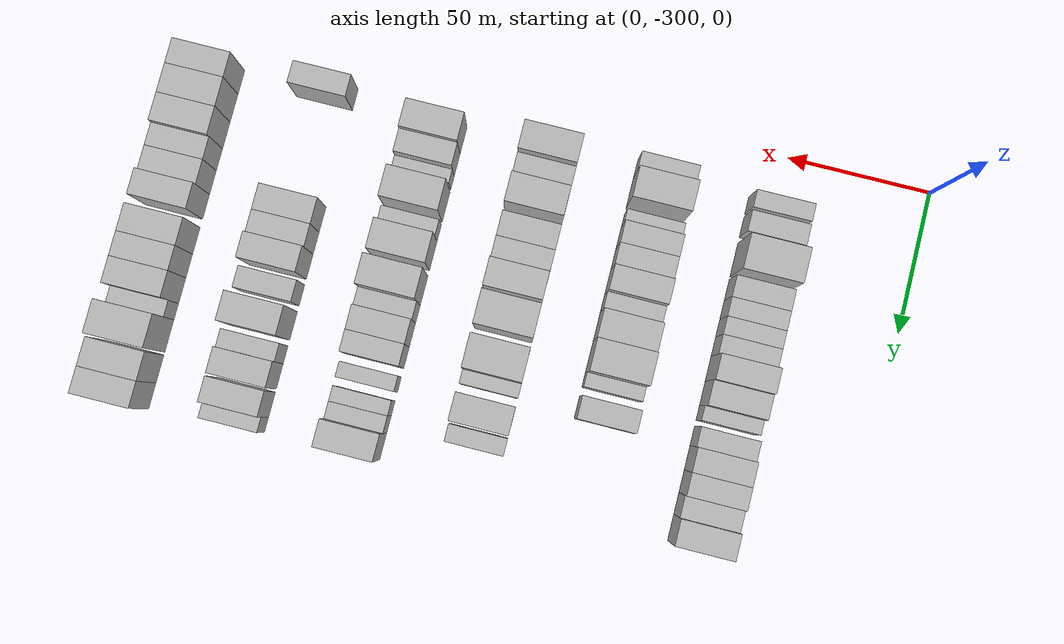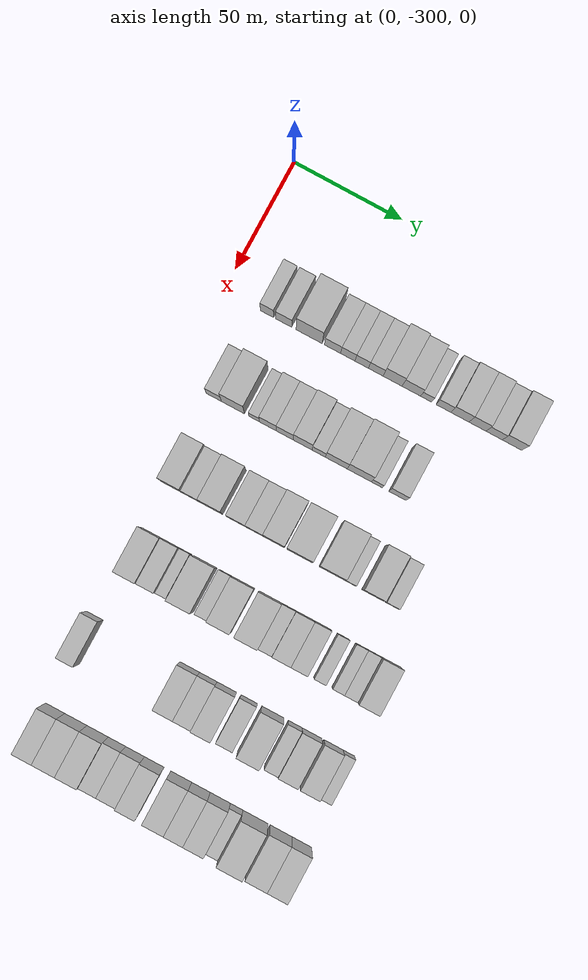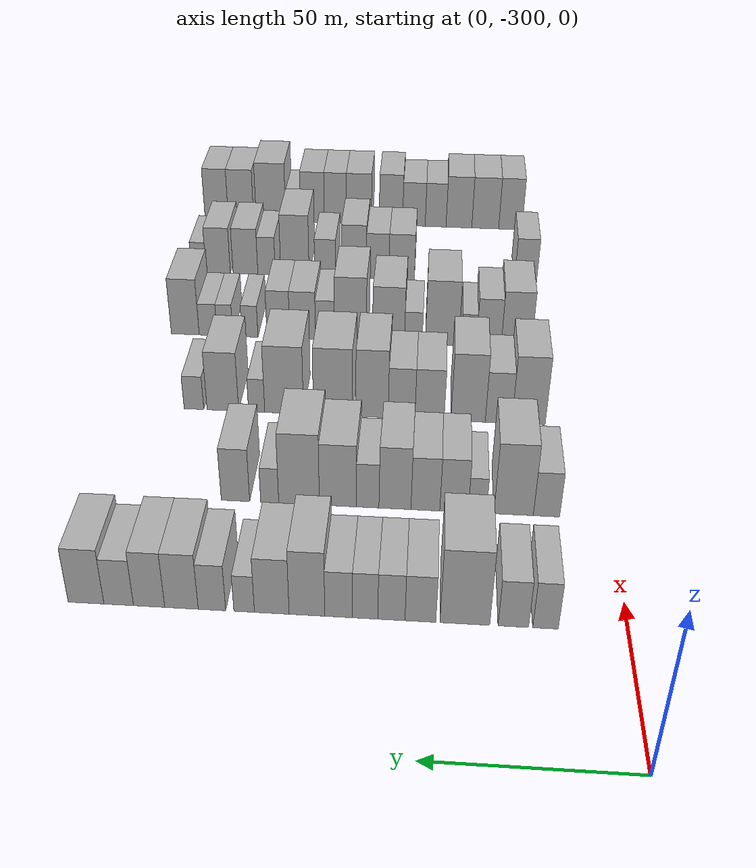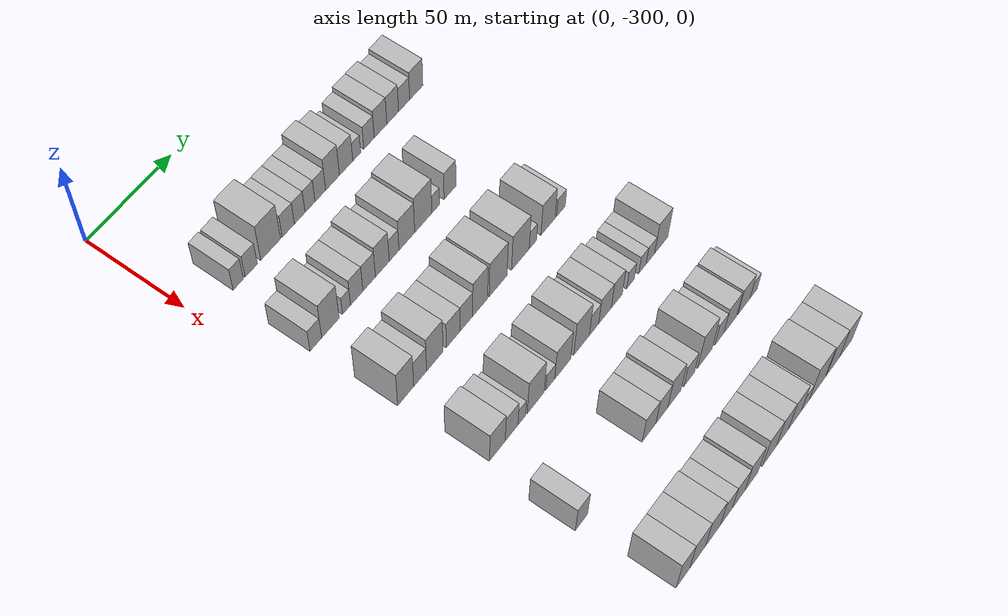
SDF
<sdf version="1.6">
 <world name="default">
  <model name="building_40">
   <static>1</static>
   <pose>50.0000 -280.1868 0 0.000000 0.000000 0.000000</pose>
   <link name="link">
    <pose>0 0 7.50 0 0 0</pose>
    <collision name="collision"><geometry><box><size>20.0000 6.0826 15.0000</size></box></geometry></collision>
    <visual name="visual">
     <cast_shadows>0</cast_shadows>
     <geometry><box><size>20.0000 6.0826 15.0000</size></box></geometry>
     <material>
      <script>
       <uri>model://HANNAS_wall/materials/scripts</uri>
       <uri>model://HANNAS_wall/materials/textures</uri>
       <name>vrc/HANNAS_wall</name>
      </script>
     </material>
    </visual>
   </link>
  </model>
  <model name="building_41">
   <static>1</static>
   <pose>50.0000 -272.4951 0 0.000000 0.000000 0.000000</pose>
   <link name="link">
    <pose>0 0 7.50 0 0 0</pose>
    <collision name="collision"><geometry><box><size>20.0000 7.3009 15.0000</size></box></geometry></collision>
    <visual name="visual">
     <cast_shadows>0</cast_shadows>
     <geometry><box><size>20.0000 7.3009 15.0000</size></box></geometry>
     <material>
      <script>
       <uri>model://HANNAS_wall/materials/scripts</uri>
       <uri>model://HANNAS_wall/materials/textures</uri>
       <name>vrc/HANNAS_wall</name>
      </script>
     </material>
    </visual>
   </link>
  </model>
  <model name="building_42">
   <static>1</static>
   <pose>50.0000 -260.8560 0 0.000000 0.000000 0.000000</pose>
   <link name="link">
    <pose>0 0 12.00 0 0 0</pose>
    <collision name="collision"><geometry><box><size>20.0000 11.9773 24.0000</size></box></geometry></collision>
    <visual name="visual">
     <cast_shadows>0</cast_shadows>
     <geometry><box><size>20.0000 11.9773 24.0000</size></box></geometry>
     <material>
      <script>
       <uri>model://HANNAS_wall/materials/scripts</uri>
       <uri>model://HANNAS_wall/materials/textures</uri>
       <name>vrc/HANNAS_wall</name>
      </script>
     </material>
    </visual>
   </link>
  </model>
  <model name="building_43">
   <static>1</static>
   <pose>50.0000 -250.1398 0 0.000000 0.000000 0.000000</pose>
   <link name="link">
    <pose>0 0 7.50 0 0 0</pose>
    <collision name="collision"><geometry><box><size>20.0000 7.4550 15.0000</size></box></geometry></collision>
    <visual name="visual">
     <cast_shadows>0</cast_shadows>
     <geometry><box><size>20.0000 7.4550 15.0000</size></box></geometry>
     <material>
      <script>
       <uri>model://HANNAS_wall/materials/scripts</uri>
       <uri>model://HANNAS_wall/materials/textures</uri>
       <name>vrc/HANNAS_wall</name>
      </script>
     </material>
    </visual>
   </link>
  </model>
  <model name="building_44">
   <static>1</static>
   <pose>50.0000 -243.1151 0 0.000000 0.000000 0.000000</pose>
   <link name="link">
    <pose>0 0 7.50 0 0 0</pose>
    <collision name="collision"><geometry><box><size>20.0000 6.5945 15.0000</size></box></geometry></collision>
    <visual name="visual">
     <cast_shadows>0</cast_shadows>
     <geometry><box><size>20.0000 6.5945 15.0000</size></box></geometry>
     <material>
      <script>
       <uri>model://HANNAS_wall/materials/scripts</uri>
       <uri>model://HANNAS_wall/materials/textures</uri>
       <name>vrc/HANNAS_wall</name>
      </script>
     </material>
    </visual>
   </link>
  </model>
  <model name="building_45">
   <static>1</static>
   <pose>50.0000 -236.7300 0 0.000000 0.000000 0.000000</pose>
   <link name="link">
    <pose>0 0 7.50 0 0 0</pose>
    <collision name="collision"><geometry><box><size>20.0000 6.1757 15.0000</size></box></geometry></collision>
    <visual name="visual">
     <cast_shadows>0</cast_shadows>
     <geometry><box><size>20.0000 6.1757 15.0000</size></box></geometry>
     <material>
      <script>
       <uri>model://HANNAS_wall/materials/scripts</uri>
       <uri>model://HANNAS_wall/materials/textures</uri>
       <name>vrc/HANNAS_wall</name>
      </script>
     </material>
    </visual>
   </link>
  </model>
  <model name="building_46">
   <static>1</static>
   <pose>50.0000 -230.2911 0 0.000000 0.000000 0.000000</pose>
   <link name="link">
    <pose>0 0 7.50 0 0 0</pose>
    <collision name="collision"><geometry><box><size>20.0000 6.7020 15.0000</size></box></geometry></collision>
    <visual name="visual">
     <cast_shadows>0</cast_shadows>
     <geometry><box><size>20.0000 6.7020 15.0000</size></box></geometry>
     <material>
      <script>
       <uri>model://HANNAS_wall/materials/scripts</uri>
       <uri>model://HANNAS_wall/materials/textures</uri>
       <name>vrc/HANNAS_wall</name>
      </script>
     </material>
    </visual>
   </link>
  </model>
  <model name="building_47">
   <static>1</static>
   <pose>50.0000 -222.5917 0 0.000000 0.000000 0.000000</pose>
   <link name="link">
    <pose>0 0 10.50 0 0 0</pose>
    <collision name="collision"><geometry><box><size>20.0000 8.6969 21.0000</size></box></geometry></collision>
    <visual name="visual">
     <cast_shadows>0</cast_shadows>
     <geometry><box><size>20.0000 8.6969 21.0000</size></box></geometry>
     <material>
      <script>
       <uri>model://HANNAS_wall/materials/scripts</uri>
       <uri>model://HANNAS_wall/materials/textures</uri>
       <name>vrc/HANNAS_wall</name>
      </script>
     </material>
    </visual>
   </link>
  </model>
  <model name="building_48">
   <static>1</static>
   <pose>50.0000 -213.9903 0 0.000000 0.000000 0.000000</pose>
   <link name="link">
    <pose>0 0 9.00 0 0 0</pose>
    <collision name="collision"><geometry><box><size>20.0000 8.5060 18.0000</size></box></geometry></collision>
    <visual name="visual">
     <cast_shadows>0</cast_shadows>
     <geometry><box><size>20.0000 8.5060 18.0000</size></box></geometry>
     <material>
      <script>
       <uri>model://HANNAS_wall/materials/scripts</uri>
       <uri>model://HANNAS_wall/materials/textures</uri>
       <name>vrc/HANNAS_wall</name>
      </script>
     </material>
    </visual>
   </link>
  </model>
  <model name="building_49">
   <static>1</static>
   <pose>50.0000 -207.2096 0 0.000000 0.000000 0.000000</pose>
   <link name="link">
    <pose>0 0 6.00 0 0 0</pose>
    <collision name="collision"><geometry><box><size>20.0000 5.0555 12.0000</size></box></geometry></collision>
    <visual name="visual">
     <cast_shadows>0</cast_shadows>
     <geometry><box><size>20.0000 5.0555 12.0000</size></box></geometry>
     <material>
      <script>
       <uri>model://HANNAS_wall/materials/scripts</uri>
       <uri>model://HANNAS_wall/materials/textures</uri>
       <name>vrc/HANNAS_wall</name>
      </script>
     </material>
    </visual>
   </link>
  </model>
  <model name="building_50">
   <static>1</static>
   <pose>50.0000 -199.2909 0 0.000000 0.000000 0.000000</pose>
   <link name="link">
    <pose>0 0 7.50 0 0 0</pose>
    <collision name="collision"><geometry><box><size>20.0000 6.7819 15.0000</size></box></geometry></collision>
    <visual name="visual">
     <cast_shadows>0</cast_shadows>
     <geometry><box><size>20.0000 6.7819 15.0000</size></box></geometry>
     <material>
      <script>
       <uri>model://HANNAS_wall/materials/scripts</uri>
       <uri>model://HANNAS_wall/materials/textures</uri>
       <name>vrc/HANNAS_wall</name>
      </script>
     </material>
    </visual>
   </link>
  </model>
  <model name="building_51">
   <static>1</static>
   <pose>50.0000 -191.7528 0 0.000000 0.000000 0.000000</pose>
   <link name="link">
    <pose>0 0 9.00 0 0 0</pose>
    <collision name="collision"><geometry><box><size>20.0000 8.2944 18.0000</size></box></geometry></collision>
    <visual name="visual">
     <cast_shadows>0</cast_shadows>
     <geometry><box><size>20.0000 8.2944 18.0000</size></box></geometry>
     <material>
      <script>
       <uri>model://HANNAS_wall/materials/scripts</uri>
       <uri>model://HANNAS_wall/materials/textures</uri>
       <name>vrc/HANNAS_wall</name>
      </script>
     </material>
    </visual>
   </link>
  </model>
  <model name="building_52">
   <static>1</static>
   <pose>50.0000 -183.7305 0 0.000000 0.000000 0.000000</pose>
   <link name="link">
    <pose>0 0 9.00 0 0 0</pose>
    <collision name="collision"><geometry><box><size>20.0000 7.7502 18.0000</size></box></geometry></collision>
    <visual name="visual">
     <cast_shadows>0</cast_shadows>
     <geometry><box><size>20.0000 7.7502 18.0000</size></box></geometry>
     <material>
      <script>
       <uri>model://HANNAS_wall/materials/scripts</uri>
       <uri>model://HANNAS_wall/materials/textures</uri>
       <name>vrc/HANNAS_wall</name>
      </script>
     </material>
    </visual>
   </link>
  </model>
  <model name="building_53">
   <static>1</static>
   <pose>50.0000 -176.1600 0 0.000000 0.000000 0.000000</pose>
   <link name="link">
    <pose>0 0 7.50 0 0 0</pose>
    <collision name="collision"><geometry><box><size>20.0000 7.3907 15.0000</size></box></geometry></collision>
    <visual name="visual">
     <cast_shadows>0</cast_shadows>
     <geometry><box><size>20.0000 7.3907 15.0000</size></box></geometry>
     <material>
      <script>
       <uri>model://HANNAS_wall/materials/scripts</uri>
       <uri>model://HANNAS_wall/materials/textures</uri>
       <name>vrc/HANNAS_wall</name>
      </script>
     </material>
    </visual>
   </link>
  </model>
  <model name="building_54">
   <static>1</static>
   <pose>50.0000 -168.0063 0 0.000000 0.000000 0.000000</pose>
   <link name="link">
    <pose>0 0 9.00 0 0 0</pose>
    <collision name="collision"><geometry><box><size>20.0000 8.9166 18.0000</size></box></geometry></collision>
    <visual name="visual">
     <cast_shadows>0</cast_shadows>
     <geometry><box><size>20.0000 8.9166 18.0000</size></box></geometry>
     <material>
      <script>
       <uri>model://HANNAS_wall/materials/scripts</uri>
       <uri>model://HANNAS_wall/materials/textures</uri>
       <name>vrc/HANNAS_wall</name>
      </script>
     </material>
    </visual>
   </link>
  </model>
  <model name="building_183">
   <static>1</static>
   <pose>90.0000 -282.9217 0 0.000000 0.000000 0.000000</pose>
   <link name="link">
    <pose>0 0 7.50 0 0 0</pose>
    <collision name="collision"><geometry><box><size>20.0000 6.9858 15.0000</size></box></geometry></collision>
    <visual name="visual">
     <cast_shadows>0</cast_shadows>
     <geometry><box><size>20.0000 6.9858 15.0000</size></box></geometry>
     <material>
      <script>
       <uri>model://HANNAS_wall/materials/scripts</uri>
       <uri>model://HANNAS_wall/materials/textures</uri>
       <name>vrc/HANNAS_wall</name>
      </script>
     </material>
    </visual>
   </link>
  </model>
  <model name="building_184">
   <static>1</static>
   <pose>90.0000 -274.1779 0 0.000000 0.000000 0.000000</pose>
   <link name="link">
    <pose>0 0 12.00 0 0 0</pose>
    <collision name="collision"><geometry><box><size>20.0000 10.5017 24.0000</size></box></geometry></collision>
    <visual name="visual">
     <cast_shadows>0</cast_shadows>
     <geometry><box><size>20.0000 10.5017 24.0000</size></box></geometry>
     <material>
      <script>
       <uri>model://HANNAS_wall/materials/scripts</uri>
       <uri>model://HANNAS_wall/materials/textures</uri>
       <name>vrc/HANNAS_wall</name>
      </script>
     </material>
    </visual>
   </link>
  </model>
  <model name="building_185">
   <static>1</static>
   <pose>90.0000 -264.4903 0 0.000000 0.000000 0.000000</pose>
   <link name="link">
    <pose>0 0 6.00 0 0 0</pose>
    <collision name="collision"><geometry><box><size>20.0000 4.8736 12.0000</size></box></geometry></collision>
    <visual name="visual">
     <cast_shadows>0</cast_shadows>
     <geometry><box><size>20.0000 4.8736 12.0000</size></box></geometry>
     <material>
      <script>
       <uri>model://HANNAS_wall/materials/scripts</uri>
       <uri>model://HANNAS_wall/materials/textures</uri>
       <name>vrc/HANNAS_wall</name>
      </script>
     </material>
    </visual>
   </link>
  </model>
  <model name="building_186">
   <static>1</static>
   <pose>90.0000 -258.2378 0 0.000000 0.000000 0.000000</pose>
   <link name="link">
    <pose>0 0 9.00 0 0 0</pose>
    <collision name="collision"><geometry><box><size>20.0000 7.6314 18.0000</size></box></geometry></collision>
    <visual name="visual">
     <cast_shadows>0</cast_shadows>
     <geometry><box><size>20.0000 7.6314 18.0000</size></box></geometry>
     <material>
      <script>
       <uri>model://HANNAS_wall/materials/scripts</uri>
       <uri>model://HANNAS_wall/materials/textures</uri>
       <name>vrc/HANNAS_wall</name>
      </script>
     </material>
    </visual>
   </link>
  </model>
  <model name="building_187">
   <static>1</static>
   <pose>90.0000 -250.5424 0 0.000000 0.000000 0.000000</pose>
   <link name="link">
    <pose>0 0 9.00 0 0 0</pose>
    <collision name="collision"><geometry><box><size>20.0000 7.7593 18.0000</size></box></geometry></collision>
    <visual name="visual">
     <cast_shadows>0</cast_shadows>
     <geometry><box><size>20.0000 7.7593 18.0000</size></box></geometry>
     <material>
      <script>
       <uri>model://HANNAS_wall/materials/scripts</uri>
       <uri>model://HANNAS_wall/materials/textures</uri>
       <name>vrc/HANNAS_wall</name>
      </script>
     </material>
    </visual>
   </link>
  </model>
  <model name="building_188">
   <static>1</static>
   <pose>90.0000 -242.3462 0 0.000000 0.000000 0.000000</pose>
   <link name="link">
    <pose>0 0 10.50 0 0 0</pose>
    <collision name="collision"><geometry><box><size>20.0000 8.6331 21.0000</size></box></geometry></collision>
    <visual name="visual">
     <cast_shadows>0</cast_shadows>
     <geometry><box><size>20.0000 8.6331 21.0000</size></box></geometry>
     <material>
      <script>
       <uri>model://HANNAS_wall/materials/scripts</uri>
       <uri>model://HANNAS_wall/materials/textures</uri>
       <name>vrc/HANNAS_wall</name>
      </script>
     </material>
    </visual>
   </link>
  </model>
  <model name="building_189">
   <static>1</static>
   <pose>90.0000 -234.9696 0 0.000000 0.000000 0.000000</pose>
   <link name="link">
    <pose>0 0 7.50 0 0 0</pose>
    <collision name="collision"><geometry><box><size>20.0000 6.1202 15.0000</size></box></geometry></collision>
    <visual name="visual">
     <cast_shadows>0</cast_shadows>
     <geometry><box><size>20.0000 6.1202 15.0000</size></box></geometry>
     <material>
      <script>
       <uri>model://HANNAS_wall/materials/scripts</uri>
       <uri>model://HANNAS_wall/materials/textures</uri>
       <name>vrc/HANNAS_wall</name>
      </script>
     </material>
    </visual>
   </link>
  </model>
  <model name="building_190">
   <static>1</static>
   <pose>90.0000 -226.9036 0 0.000000 0.000000 0.000000</pose>
   <link name="link">
    <pose>0 0 10.50 0 0 0</pose>
    <collision name="collision"><geometry><box><size>20.0000 10.0118 21.0000</size></box></geometry></collision>
    <visual name="visual">
     <cast_shadows>0</cast_shadows>
     <geometry><box><size>20.0000 10.0118 21.0000</size></box></geometry>
     <material>
      <script>
       <uri>model://HANNAS_wall/materials/scripts</uri>
       <uri>model://HANNAS_wall/materials/textures</uri>
       <name>vrc/HANNAS_wall</name>
      </script>
     </material>
    </visual>
   </link>
  </model>
  <model name="building_191">
   <static>1</static>
   <pose>90.0000 -216.3627 0 0.000000 0.000000 0.000000</pose>
   <link name="link">
    <pose>0 0 12.00 0 0 0</pose>
    <collision name="collision"><geometry><box><size>20.0000 11.0700 24.0000</size></box></geometry></collision>
    <visual name="visual">
     <cast_shadows>0</cast_shadows>
     <geometry><box><size>20.0000 11.0700 24.0000</size></box></geometry>
     <material>
      <script>
       <uri>model://HANNAS_wall/materials/scripts</uri>
       <uri>model://HANNAS_wall/materials/textures</uri>
       <name>vrc/HANNAS_wall</name>
      </script>
     </material>
    </visual>
   </link>
  </model>
  <model name="building_192">
   <static>1</static>
   <pose>90.0000 -208.3640 0 0.000000 0.000000 0.000000</pose>
   <link name="link">
    <pose>0 0 6.00 0 0 0</pose>
    <collision name="collision"><geometry><box><size>20.0000 4.9275 12.0000</size></box></geometry></collision>
    <visual name="visual">
     <cast_shadows>0</cast_shadows>
     <geometry><box><size>20.0000 4.9275 12.0000</size></box></geometry>
     <material>
      <script>
       <uri>model://HANNAS_wall/materials/scripts</uri>
       <uri>model://HANNAS_wall/materials/textures</uri>
       <name>vrc/HANNAS_wall</name>
      </script>
     </material>
    </visual>
   </link>
  </model>
  <model name="building_193">
   <static>1</static>
   <pose>90.0000 -199.0063 0 0.000000 0.000000 0.000000</pose>
   <link name="link">
    <pose>0 0 9.00 0 0 0</pose>
    <collision name="collision"><geometry><box><size>20.0000 7.7879 18.0000</size></box></geometry></collision>
    <visual name="visual">
     <cast_shadows>0</cast_shadows>
     <geometry><box><size>20.0000 7.7879 18.0000</size></box></geometry>
     <material>
      <script>
       <uri>model://HANNAS_wall/materials/scripts</uri>
       <uri>model://HANNAS_wall/materials/textures</uri>
       <name>vrc/HANNAS_wall</name>
      </script>
     </material>
    </visual>
   </link>
  </model>
  <model name="building_317">
   <static>1</static>
   <pose>130.0000 -280.1495 0 0.000000 0.000000 0.000000</pose>
   <link name="link">
    <pose>0 0 12.00 0 0 0</pose>
    <collision name="collision"><geometry><box><size>20.0000 9.7644 24.0000</size></box></geometry></collision>
    <visual name="visual">
     <cast_shadows>0</cast_shadows>
     <geometry><box><size>20.0000 9.7644 24.0000</size></box></geometry>
     <material>
      <script>
       <uri>model://HANNAS_wall/materials/scripts</uri>
       <uri>model://HANNAS_wall/materials/textures</uri>
       <name>vrc/HANNAS_wall</name>
      </script>
     </material>
    </visual>
   </link>
  </model>
  <model name="building_318">
   <static>1</static>
   <pose>130.0000 -271.3567 0 0.000000 0.000000 0.000000</pose>
   <link name="link">
    <pose>0 0 9.00 0 0 0</pose>
    <collision name="collision"><geometry><box><size>20.0000 7.8212 18.0000</size></box></geometry></collision>
    <visual name="visual">
     <cast_shadows>0</cast_shadows>
     <geometry><box><size>20.0000 7.8212 18.0000</size></box></geometry>
     <material>
      <script>
       <uri>model://HANNAS_wall/materials/scripts</uri>
       <uri>model://HANNAS_wall/materials/textures</uri>
       <name>vrc/HANNAS_wall</name>
      </script>
     </material>
    </visual>
   </link>
  </model>
  <model name="building_319">
   <static>1</static>
   <pose>130.0000 -262.3689 0 0.000000 0.000000 0.000000</pose>
   <link name="link">
    <pose>0 0 12.00 0 0 0</pose>
    <collision name="collision"><geometry><box><size>20.0000 10.1545 24.0000</size></box></geometry></collision>
    <visual name="visual">
     <cast_shadows>0</cast_shadows>
     <geometry><box><size>20.0000 10.1545 24.0000</size></box></geometry>
     <material>
      <script>
       <uri>model://HANNAS_wall/materials/scripts</uri>
       <uri>model://HANNAS_wall/materials/textures</uri>
       <name>vrc/HANNAS_wall</name>
      </script>
     </material>
    </visual>
   </link>
  </model>
  <model name="building_320">
   <static>1</static>
   <pose>130.0000 -250.9676 0 0.000000 0.000000 0.000000</pose>
   <link name="link">
    <pose>0 0 9.00 0 0 0</pose>
    <collision name="collision"><geometry><box><size>20.0000 8.6480 18.0000</size></box></geometry></collision>
    <visual name="visual">
     <cast_shadows>0</cast_shadows>
     <geometry><box><size>20.0000 8.6480 18.0000</size></box></geometry>
     <material>
      <script>
       <uri>model://HANNAS_wall/materials/scripts</uri>
       <uri>model://HANNAS_wall/materials/textures</uri>
       <name>vrc/HANNAS_wall</name>
      </script>
     </material>
    </visual>
   </link>
  </model>
  <model name="building_321">
   <static>1</static>
   <pose>130.0000 -242.6592 0 0.000000 0.000000 0.000000</pose>
   <link name="link">
    <pose>0 0 9.00 0 0 0</pose>
    <collision name="collision"><geometry><box><size>20.0000 7.9688 18.0000</size></box></geometry></collision>
    <visual name="visual">
     <cast_shadows>0</cast_shadows>
     <geometry><box><size>20.0000 7.9688 18.0000</size></box></geometry>
     <material>
      <script>
       <uri>model://HANNAS_wall/materials/scripts</uri>
       <uri>model://HANNAS_wall/materials/textures</uri>
       <name>vrc/HANNAS_wall</name>
      </script>
     </material>
    </visual>
   </link>
  </model>
  <model name="building_322">
   <static>1</static>
   <pose>130.0000 -233.8591 0 0.000000 0.000000 0.000000</pose>
   <link name="link">
    <pose>0 0 12.00 0 0 0</pose>
    <collision name="collision"><geometry><box><size>20.0000 9.6313 24.0000</size></box></geometry></collision>
    <visual name="visual">
     <cast_shadows>0</cast_shadows>
     <geometry><box><size>20.0000 9.6313 24.0000</size></box></geometry>
     <material>
      <script>
       <uri>model://HANNAS_wall/materials/scripts</uri>
       <uri>model://HANNAS_wall/materials/textures</uri>
       <name>vrc/HANNAS_wall</name>
      </script>
     </material>
    </visual>
   </link>
  </model>
  <model name="building_323">
   <static>1</static>
   <pose>130.0000 -222.2256 0 0.000000 0.000000 0.000000</pose>
   <link name="link">
    <pose>0 0 12.00 0 0 0</pose>
    <collision name="collision"><geometry><box><size>20.0000 11.6358 24.0000</size></box></geometry></collision>
    <visual name="visual">
     <cast_shadows>0</cast_shadows>
     <geometry><box><size>20.0000 11.6358 24.0000</size></box></geometry>
     <material>
      <script>
       <uri>model://HANNAS_wall/materials/scripts</uri>
       <uri>model://HANNAS_wall/materials/textures</uri>
       <name>vrc/HANNAS_wall</name>
      </script>
     </material>
    </visual>
   </link>
  </model>
  <model name="building_324">
   <static>1</static>
   <pose>130.0000 -207.5855 0 0.000000 0.000000 0.000000</pose>
   <link name="link">
    <pose>0 0 12.00 0 0 0</pose>
    <collision name="collision"><geometry><box><size>20.0000 11.6444 24.0000</size></box></geometry></collision>
    <visual name="visual">
     <cast_shadows>0</cast_shadows>
     <geometry><box><size>20.0000 11.6444 24.0000</size></box></geometry>
     <material>
      <script>
       <uri>model://HANNAS_wall/materials/scripts</uri>
       <uri>model://HANNAS_wall/materials/textures</uri>
       <name>vrc/HANNAS_wall</name>
      </script>
     </material>
    </visual>
   </link>
  </model>
  <model name="building_325">
   <static>1</static>
   <pose>130.0000 -199.3218 0 0.000000 0.000000 0.000000</pose>
   <link name="link">
    <pose>0 0 6.00 0 0 0</pose>
    <collision name="collision"><geometry><box><size>20.0000 4.8830 12.0000</size></box></geometry></collision>
    <visual name="visual">
     <cast_shadows>0</cast_shadows>
     <geometry><box><size>20.0000 4.8830 12.0000</size></box></geometry>
     <material>
      <script>
       <uri>model://HANNAS_wall/materials/scripts</uri>
       <uri>model://HANNAS_wall/materials/textures</uri>
       <name>vrc/HANNAS_wall</name>
      </script>
     </material>
    </visual>
   </link>
  </model>
  <model name="building_326">
   <static>1</static>
   <pose>130.0000 -189.1049 0 0.000000 0.000000 0.000000</pose>
   <link name="link">
    <pose>0 0 10.50 0 0 0</pose>
    <collision name="collision"><geometry><box><size>20.0000 9.5509 21.0000</size></box></geometry></collision>
    <visual name="visual">
     <cast_shadows>0</cast_shadows>
     <geometry><box><size>20.0000 9.5509 21.0000</size></box></geometry>
     <material>
      <script>
       <uri>model://HANNAS_wall/materials/scripts</uri>
       <uri>model://HANNAS_wall/materials/textures</uri>
       <name>vrc/HANNAS_wall</name>
      </script>
     </material>
    </visual>
   </link>
  </model>
  <model name="building_327">
   <static>1</static>
   <pose>130.0000 -180.3551 0 0.000000 0.000000 0.000000</pose>
   <link name="link">
    <pose>0 0 6.00 0 0 0</pose>
    <collision name="collision"><geometry><box><size>20.0000 5.9486 12.0000</size></box></geometry></collision>
    <visual name="visual">
     <cast_shadows>0</cast_shadows>
     <geometry><box><size>20.0000 5.9486 12.0000</size></box></geometry>
     <material>
      <script>
       <uri>model://HANNAS_wall/materials/scripts</uri>
       <uri>model://HANNAS_wall/materials/textures</uri>
       <name>vrc/HANNAS_wall</name>
      </script>
     </material>
    </visual>
   </link>
  </model>
  <model name="building_445">
   <static>1</static>
   <pose>170.0000 -278.2353 0 0.000000 0.000000 0.000000</pose>
   <link name="link">
    <pose>0 0 10.50 0 0 0</pose>
    <collision name="collision"><geometry><box><size>20.0000 9.7269 21.0000</size></box></geometry></collision>
    <visual name="visual">
     <cast_shadows>0</cast_shadows>
     <geometry><box><size>20.0000 9.7269 21.0000</size></box></geometry>
     <material>
      <script>
       <uri>model://HANNAS_wall/materials/scripts</uri>
       <uri>model://HANNAS_wall/materials/textures</uri>
       <name>vrc/HANNAS_wall</name>
      </script>
     </material>
    </visual>
   </link>
  </model>
  <model name="building_446">
   <static>1</static>
   <pose>170.0000 -269.4042 0 0.000000 0.000000 0.000000</pose>
   <link name="link">
    <pose>0 0 9.00 0 0 0</pose>
    <collision name="collision"><geometry><box><size>20.0000 7.9352 18.0000</size></box></geometry></collision>
    <visual name="visual">
     <cast_shadows>0</cast_shadows>
     <geometry><box><size>20.0000 7.9352 18.0000</size></box></geometry>
     <material>
      <script>
       <uri>model://HANNAS_wall/materials/scripts</uri>
       <uri>model://HANNAS_wall/materials/textures</uri>
       <name>vrc/HANNAS_wall</name>
      </script>
     </material>
    </visual>
   </link>
  </model>
  <model name="building_447">
   <static>1</static>
   <pose>170.0000 -263.0118 0 0.000000 0.000000 0.000000</pose>
   <link name="link">
    <pose>0 0 6.00 0 0 0</pose>
    <collision name="collision"><geometry><box><size>20.0000 4.8497 12.0000</size></box></geometry></collision>
    <visual name="visual">
     <cast_shadows>0</cast_shadows>
     <geometry><box><size>20.0000 4.8497 12.0000</size></box></geometry>
     <material>
      <script>
       <uri>model://HANNAS_wall/materials/scripts</uri>
       <uri>model://HANNAS_wall/materials/textures</uri>
       <name>vrc/HANNAS_wall</name>
      </script>
     </material>
    </visual>
   </link>
  </model>
  <model name="building_448">
   <static>1</static>
   <pose>170.0000 -254.2408 0 0.000000 0.000000 0.000000</pose>
   <link name="link">
    <pose>0 0 12.00 0 0 0</pose>
    <collision name="collision"><geometry><box><size>20.0000 10.6923 24.0000</size></box></geometry></collision>
    <visual name="visual">
     <cast_shadows>0</cast_shadows>
     <geometry><box><size>20.0000 10.6923 24.0000</size></box></geometry>
     <material>
      <script>
       <uri>model://HANNAS_wall/materials/scripts</uri>
       <uri>model://HANNAS_wall/materials/textures</uri>
       <name>vrc/HANNAS_wall</name>
      </script>
     </material>
    </visual>
   </link>
  </model>
  <model name="building_449">
   <static>1</static>
   <pose>170.0000 -245.0057 0 0.000000 0.000000 0.000000</pose>
   <link name="link">
    <pose>0 0 6.00 0 0 0</pose>
    <collision name="collision"><geometry><box><size>20.0000 5.7780 12.0000</size></box></geometry></collision>
    <visual name="visual">
     <cast_shadows>0</cast_shadows>
     <geometry><box><size>20.0000 5.7780 12.0000</size></box></geometry>
     <material>
      <script>
       <uri>model://HANNAS_wall/materials/scripts</uri>
       <uri>model://HANNAS_wall/materials/textures</uri>
       <name>vrc/HANNAS_wall</name>
      </script>
     </material>
    </visual>
   </link>
  </model>
  <model name="building_450">
   <static>1</static>
   <pose>170.0000 -236.9291 0 0.000000 0.000000 0.000000</pose>
   <link name="link">
    <pose>0 0 10.50 0 0 0</pose>
    <collision name="collision"><geometry><box><size>20.0000 10.3752 21.0000</size></box></geometry></collision>
    <visual name="visual">
     <cast_shadows>0</cast_shadows>
     <geometry><box><size>20.0000 10.3752 21.0000</size></box></geometry>
     <material>
      <script>
       <uri>model://HANNAS_wall/materials/scripts</uri>
       <uri>model://HANNAS_wall/materials/textures</uri>
       <name>vrc/HANNAS_wall</name>
      </script>
     </material>
    </visual>
   </link>
  </model>
  <model name="building_451">
   <static>1</static>
   <pose>170.0000 -224.5737 0 0.000000 0.000000 0.000000</pose>
   <link name="link">
    <pose>0 0 12.00 0 0 0</pose>
    <collision name="collision"><geometry><box><size>20.0000 10.3356 24.0000</size></box></geometry></collision>
    <visual name="visual">
     <cast_shadows>0</cast_shadows>
     <geometry><box><size>20.0000 10.3356 24.0000</size></box></geometry>
     <material>
      <script>
       <uri>model://HANNAS_wall/materials/scripts</uri>
       <uri>model://HANNAS_wall/materials/textures</uri>
       <name>vrc/HANNAS_wall</name>
      </script>
     </material>
    </visual>
   </link>
  </model>
  <model name="building_452">
   <static>1</static>
   <pose>170.0000 -216.2816 0 0.000000 0.000000 0.000000</pose>
   <link name="link">
    <pose>0 0 7.50 0 0 0</pose>
    <collision name="collision"><geometry><box><size>20.0000 6.2487 15.0000</size></box></geometry></collision>
    <visual name="visual">
     <cast_shadows>0</cast_shadows>
     <geometry><box><size>20.0000 6.2487 15.0000</size></box></geometry>
     <material>
      <script>
       <uri>model://HANNAS_wall/materials/scripts</uri>
       <uri>model://HANNAS_wall/materials/textures</uri>
       <name>vrc/HANNAS_wall</name>
      </script>
     </material>
    </visual>
   </link>
  </model>
  <model name="building_453">
   <static>1</static>
   <pose>170.0000 -208.9413 0 0.000000 0.000000 0.000000</pose>
   <link name="link">
    <pose>0 0 9.00 0 0 0</pose>
    <collision name="collision"><geometry><box><size>20.0000 8.4319 18.0000</size></box></geometry></collision>
    <visual name="visual">
     <cast_shadows>0</cast_shadows>
     <geometry><box><size>20.0000 8.4319 18.0000</size></box></geometry>
     <material>
      <script>
       <uri>model://HANNAS_wall/materials/scripts</uri>
       <uri>model://HANNAS_wall/materials/textures</uri>
       <name>vrc/HANNAS_wall</name>
      </script>
     </material>
    </visual>
   </link>
  </model>
  <model name="building_454">
   <static>1</static>
   <pose>170.0000 -200.9959 0 0.000000 0.000000 0.000000</pose>
   <link name="link">
    <pose>0 0 9.00 0 0 0</pose>
    <collision name="collision"><geometry><box><size>20.0000 7.4588 18.0000</size></box></geometry></collision>
    <visual name="visual">
     <cast_shadows>0</cast_shadows>
     <geometry><box><size>20.0000 7.4588 18.0000</size></box></geometry>
     <material>
      <script>
       <uri>model://HANNAS_wall/materials/scripts</uri>
       <uri>model://HANNAS_wall/materials/textures</uri>
       <name>vrc/HANNAS_wall</name>
      </script>
     </material>
    </visual>
   </link>
  </model>
  <model name="building_455">
   <static>1</static>
   <pose>170.0000 -191.6195 0 0.000000 0.000000 0.000000</pose>
   <link name="link">
    <pose>0 0 6.00 0 0 0</pose>
    <collision name="collision"><geometry><box><size>20.0000 5.2940 12.0000</size></box></geometry></collision>
    <visual name="visual">
     <cast_shadows>0</cast_shadows>
     <geometry><box><size>20.0000 5.2940 12.0000</size></box></geometry>
     <material>
      <script>
       <uri>model://HANNAS_wall/materials/scripts</uri>
       <uri>model://HANNAS_wall/materials/textures</uri>
       <name>vrc/HANNAS_wall</name>
      </script>
     </material>
    </visual>
   </link>
  </model>
  <model name="building_456">
   <static>1</static>
   <pose>170.0000 -183.3666 0 0.000000 0.000000 0.000000</pose>
   <link name="link">
    <pose>0 0 6.00 0 0 0</pose>
    <collision name="collision"><geometry><box><size>20.0000 5.2118 12.0000</size></box></geometry></collision>
    <visual name="visual">
     <cast_shadows>0</cast_shadows>
     <geometry><box><size>20.0000 5.2118 12.0000</size></box></geometry>
     <material>
      <script>
       <uri>model://HANNAS_wall/materials/scripts</uri>
       <uri>model://HANNAS_wall/materials/textures</uri>
       <name>vrc/HANNAS_wall</name>
      </script>
     </material>
    </visual>
   </link>
  </model>
  <model name="building_457">
   <static>1</static>
   <pose>170.0000 -177.8051 0 0.000000 0.000000 0.000000</pose>
   <link name="link">
    <pose>0 0 6.00 0 0 0</pose>
    <collision name="collision"><geometry><box><size>20.0000 5.9112 12.0000</size></box></geometry></collision>
    <visual name="visual">
     <cast_shadows>0</cast_shadows>
     <geometry><box><size>20.0000 5.9112 12.0000</size></box></geometry>
     <material>
      <script>
       <uri>model://HANNAS_wall/materials/scripts</uri>
       <uri>model://HANNAS_wall/materials/textures</uri>
       <name>vrc/HANNAS_wall</name>
      </script>
     </material>
    </visual>
   </link>
  </model>
  <model name="building_458">
   <static>1</static>
   <pose>170.0000 -170.2404 0 0.000000 0.000000 0.000000</pose>
   <link name="link">
    <pose>0 0 10.50 0 0 0</pose>
    <collision name="collision"><geometry><box><size>20.0000 9.2181 21.0000</size></box></geometry></collision>
    <visual name="visual">
     <cast_shadows>0</cast_shadows>
     <geometry><box><size>20.0000 9.2181 21.0000</size></box></geometry>
     <material>
      <script>
       <uri>model://HANNAS_wall/materials/scripts</uri>
       <uri>model://HANNAS_wall/materials/textures</uri>
       <name>vrc/HANNAS_wall</name>
      </script>
     </material>
    </visual>
   </link>
  </model>
  <model name="building_592">
   <static>1</static>
   <pose>210.0000 -283.0824 0 0.000000 0.000000 0.000000</pose>
   <link name="link">
    <pose>0 0 9.00 0 0 0</pose>
    <collision name="collision"><geometry><box><size>20.0000 7.6499 18.0000</size></box></geometry></collision>
    <visual name="visual">
     <cast_shadows>0</cast_shadows>
     <geometry><box><size>20.0000 7.6499 18.0000</size></box></geometry>
     <material>
      <script>
       <uri>model://HANNAS_wall/materials/scripts</uri>
       <uri>model://HANNAS_wall/materials/textures</uri>
       <name>vrc/HANNAS_wall</name>
      </script>
     </material>
    </visual>
   </link>
  </model>
  <model name="building_593">
   <static>1</static>
   <pose>210.0000 -239.7665 0 0.000000 0.000000 0.000000</pose>
   <link name="link">
    <pose>0 0 9.00 0 0 0</pose>
    <collision name="collision"><geometry><box><size>20.0000 8.9940 18.0000</size></box></geometry></collision>
    <visual name="visual">
     <cast_shadows>0</cast_shadows>
     <geometry><box><size>20.0000 8.9940 18.0000</size></box></geometry>
     <material>
      <script>
       <uri>model://HANNAS_wall/materials/scripts</uri>
       <uri>model://HANNAS_wall/materials/textures</uri>
       <name>vrc/HANNAS_wall</name>
      </script>
     </material>
    </visual>
   </link>
  </model>
  <model name="building_594">
   <static>1</static>
   <pose>210.0000 -231.2979 0 0.000000 0.000000 0.000000</pose>
   <link name="link">
    <pose>0 0 9.00 0 0 0</pose>
    <collision name="collision"><geometry><box><size>20.0000 7.9432 18.0000</size></box></geometry></collision>
    <visual name="visual">
     <cast_shadows>0</cast_shadows>
     <geometry><box><size>20.0000 7.9432 18.0000</size></box></geometry>
     <material>
      <script>
       <uri>model://HANNAS_wall/materials/scripts</uri>
       <uri>model://HANNAS_wall/materials/textures</uri>
       <name>vrc/HANNAS_wall</name>
      </script>
     </material>
    </visual>
   </link>
  </model>
  <model name="building_595">
   <static>1</static>
   <pose>210.0000 -222.9101 0 0.000000 0.000000 0.000000</pose>
   <link name="link">
    <pose>0 0 10.50 0 0 0</pose>
    <collision name="collision"><geometry><box><size>20.0000 8.8324 21.0000</size></box></geometry></collision>
    <visual name="visual">
     <cast_shadows>0</cast_shadows>
     <geometry><box><size>20.0000 8.8324 21.0000</size></box></geometry>
     <material>
      <script>
       <uri>model://HANNAS_wall/materials/scripts</uri>
       <uri>model://HANNAS_wall/materials/textures</uri>
       <name>vrc/HANNAS_wall</name>
      </script>
     </material>
    </visual>
   </link>
  </model>
  <model name="building_596">
   <static>1</static>
   <pose>210.0000 -212.7747 0 0.000000 0.000000 0.000000</pose>
   <link name="link">
    <pose>0 0 7.50 0 0 0</pose>
    <collision name="collision"><geometry><box><size>20.0000 7.4383 15.0000</size></box></geometry></collision>
    <visual name="visual">
     <cast_shadows>0</cast_shadows>
     <geometry><box><size>20.0000 7.4383 15.0000</size></box></geometry>
     <material>
      <script>
       <uri>model://HANNAS_wall/materials/scripts</uri>
       <uri>model://HANNAS_wall/materials/textures</uri>
       <name>vrc/HANNAS_wall</name>
      </script>
     </material>
    </visual>
   </link>
  </model>
  <model name="building_597">
   <static>1</static>
   <pose>210.0000 -202.0323 0 0.000000 0.000000 0.000000</pose>
   <link name="link">
    <pose>0 0 12.00 0 0 0</pose>
    <collision name="collision"><geometry><box><size>20.0000 10.0464 24.0000</size></box></geometry></collision>
    <visual name="visual">
     <cast_shadows>0</cast_shadows>
     <geometry><box><size>20.0000 10.0464 24.0000</size></box></geometry>
     <material>
      <script>
       <uri>model://HANNAS_wall/materials/scripts</uri>
       <uri>model://HANNAS_wall/materials/textures</uri>
       <name>vrc/HANNAS_wall</name>
      </script>
     </material>
    </visual>
   </link>
  </model>
  <model name="building_598">
   <static>1</static>
   <pose>210.0000 -191.8890 0 0.000000 0.000000 0.000000</pose>
   <link name="link">
    <pose>0 0 7.50 0 0 0</pose>
    <collision name="collision"><geometry><box><size>20.0000 6.2401 15.0000</size></box></geometry></collision>
    <visual name="visual">
     <cast_shadows>0</cast_shadows>
     <geometry><box><size>20.0000 6.2401 15.0000</size></box></geometry>
     <material>
      <script>
       <uri>model://HANNAS_wall/materials/scripts</uri>
       <uri>model://HANNAS_wall/materials/textures</uri>
       <name>vrc/HANNAS_wall</name>
      </script>
     </material>
    </visual>
   </link>
  </model>
  <model name="building_599">
   <static>1</static>
   <pose>210.0000 -184.3498 0 0.000000 0.000000 0.000000</pose>
   <link name="link">
    <pose>0 0 9.00 0 0 0</pose>
    <collision name="collision"><geometry><box><size>20.0000 8.8383 18.0000</size></box></geometry></collision>
    <visual name="visual">
     <cast_shadows>0</cast_shadows>
     <geometry><box><size>20.0000 8.8383 18.0000</size></box></geometry>
     <material>
      <script>
       <uri>model://HANNAS_wall/materials/scripts</uri>
       <uri>model://HANNAS_wall/materials/textures</uri>
       <name>vrc/HANNAS_wall</name>
      </script>
     </material>
    </visual>
   </link>
  </model>
  <model name="building_600">
   <static>1</static>
   <pose>210.0000 -174.5923 0 0.000000 0.000000 0.000000</pose>
   <link name="link">
    <pose>0 0 9.00 0 0 0</pose>
    <collision name="collision"><geometry><box><size>20.0000 8.6767 18.0000</size></box></geometry></collision>
    <visual name="visual">
     <cast_shadows>0</cast_shadows>
     <geometry><box><size>20.0000 8.6767 18.0000</size></box></geometry>
     <material>
      <script>
       <uri>model://HANNAS_wall/materials/scripts</uri>
       <uri>model://HANNAS_wall/materials/textures</uri>
       <name>vrc/HANNAS_wall</name>
      </script>
     </material>
    </visual>
   </link>
  </model>
  <model name="building_601">
   <static>1</static>
   <pose>210.0000 -167.6304 0 0.000000 0.000000 0.000000</pose>
   <link name="link">
    <pose>0 0 6.00 0 0 0</pose>
    <collision name="collision"><geometry><box><size>20.0000 5.2470 12.0000</size></box></geometry></collision>
    <visual name="visual">
     <cast_shadows>0</cast_shadows>
     <geometry><box><size>20.0000 5.2470 12.0000</size></box></geometry>
     <material>
      <script>
       <uri>model://HANNAS_wall/materials/scripts</uri>
       <uri>model://HANNAS_wall/materials/textures</uri>
       <name>vrc/HANNAS_wall</name>
      </script>
     </material>
    </visual>
   </link>
  </model>
  <model name="building_723">
   <static>1</static>
   <pose>250.0000 -279.3761 0 0.000000 0.000000 0.000000</pose>
   <link name="link">
    <pose>0 0 10.50 0 0 0</pose>
    <collision name="collision"><geometry><box><size>20.0000 8.7278 21.0000</size></box></geometry></collision>
    <visual name="visual">
     <cast_shadows>0</cast_shadows>
     <geometry><box><size>20.0000 8.7278 21.0000</size></box></geometry>
     <material>
      <script>
       <uri>model://HANNAS_wall/materials/scripts</uri>
       <uri>model://HANNAS_wall/materials/textures</uri>
       <name>vrc/HANNAS_wall</name>
      </script>
     </material>
    </visual>
   </link>
  </model>
  <model name="building_724">
   <static>1</static>
   <pose>250.0000 -269.9429 0 0.000000 0.000000 0.000000</pose>
   <link name="link">
    <pose>0 0 10.50 0 0 0</pose>
    <collision name="collision"><geometry><box><size>20.0000 10.1385 21.0000</size></box></geometry></collision>
    <visual name="visual">
     <cast_shadows>0</cast_shadows>
     <geometry><box><size>20.0000 10.1385 21.0000</size></box></geometry>
     <material>
      <script>
       <uri>model://HANNAS_wall/materials/scripts</uri>
       <uri>model://HANNAS_wall/materials/textures</uri>
       <name>vrc/HANNAS_wall</name>
      </script>
     </material>
    </visual>
   </link>
  </model>
  <model name="building_725">
   <static>1</static>
   <pose>250.0000 -260.0084 0 0.000000 0.000000 0.000000</pose>
   <link name="link">
    <pose>0 0 10.50 0 0 0</pose>
    <collision name="collision"><geometry><box><size>20.0000 9.7303 21.0000</size></box></geometry></collision>
    <visual name="visual">
     <cast_shadows>0</cast_shadows>
     <geometry><box><size>20.0000 9.7303 21.0000</size></box></geometry>
     <material>
      <script>
       <uri>model://HANNAS_wall/materials/scripts</uri>
       <uri>model://HANNAS_wall/materials/textures</uri>
       <name>vrc/HANNAS_wall</name>
      </script>
     </material>
    </visual>
   </link>
  </model>
  <model name="building_726">
   <static>1</static>
   <pose>250.0000 -251.2022 0 0.000000 0.000000 0.000000</pose>
   <link name="link">
    <pose>0 0 9.00 0 0 0</pose>
    <collision name="collision"><geometry><box><size>20.0000 7.8822 18.0000</size></box></geometry></collision>
    <visual name="visual">
     <cast_shadows>0</cast_shadows>
     <geometry><box><size>20.0000 7.8822 18.0000</size></box></geometry>
     <material>
      <script>
       <uri>model://HANNAS_wall/materials/scripts</uri>
       <uri>model://HANNAS_wall/materials/textures</uri>
       <name>vrc/HANNAS_wall</name>
      </script>
     </material>
    </visual>
   </link>
  </model>
  <model name="building_727">
   <static>1</static>
   <pose>250.0000 -242.9662 0 0.000000 0.000000 0.000000</pose>
   <link name="link">
    <pose>0 0 9.00 0 0 0</pose>
    <collision name="collision"><geometry><box><size>20.0000 8.5896 18.0000</size></box></geometry></collision>
    <visual name="visual">
     <cast_shadows>0</cast_shadows>
     <geometry><box><size>20.0000 8.5896 18.0000</size></box></geometry>
     <material>
      <script>
       <uri>model://HANNAS_wall/materials/scripts</uri>
       <uri>model://HANNAS_wall/materials/textures</uri>
       <name>vrc/HANNAS_wall</name>
      </script>
     </material>
    </visual>
   </link>
  </model>
  <model name="building_728">
   <static>1</static>
   <pose>250.0000 -234.2276 0 0.000000 0.000000 0.000000</pose>
   <link name="link">
    <pose>0 0 10.50 0 0 0</pose>
    <collision name="collision"><geometry><box><size>20.0000 8.8875 21.0000</size></box></geometry></collision>
    <visual name="visual">
     <cast_shadows>0</cast_shadows>
     <geometry><box><size>20.0000 8.8875 21.0000</size></box></geometry>
     <material>
      <script>
       <uri>model://HANNAS_wall/materials/scripts</uri>
       <uri>model://HANNAS_wall/materials/textures</uri>
       <name>vrc/HANNAS_wall</name>
      </script>
     </material>
    </visual>
   </link>
  </model>
  <model name="building_729">
   <static>1</static>
   <pose>250.0000 -222.0278 0 0.000000 0.000000 0.000000</pose>
   <link name="link">
    <pose>0 0 10.50 0 0 0</pose>
    <collision name="collision"><geometry><box><size>20.0000 9.5122 21.0000</size></box></geometry></collision>
    <visual name="visual">
     <cast_shadows>0</cast_shadows>
     <geometry><box><size>20.0000 9.5122 21.0000</size></box></geometry>
     <material>
      <script>
       <uri>model://HANNAS_wall/materials/scripts</uri>
       <uri>model://HANNAS_wall/materials/textures</uri>
       <name>vrc/HANNAS_wall</name>
      </script>
     </material>
    </visual>
   </link>
  </model>
  <model name="building_730">
   <static>1</static>
   <pose>250.0000 -213.0535 0 0.000000 0.000000 0.000000</pose>
   <link name="link">
    <pose>0 0 10.50 0 0 0</pose>
    <collision name="collision"><geometry><box><size>20.0000 8.4365 21.0000</size></box></geometry></collision>
    <visual name="visual">
     <cast_shadows>0</cast_shadows>
     <geometry><box><size>20.0000 8.4365 21.0000</size></box></geometry>
     <material>
      <script>
       <uri>model://HANNAS_wall/materials/scripts</uri>
       <uri>model://HANNAS_wall/materials/textures</uri>
       <name>vrc/HANNAS_wall</name>
      </script>
     </material>
    </visual>
   </link>
  </model>
  <model name="building_731">
   <static>1</static>
   <pose>250.0000 -204.3046 0 0.000000 0.000000 0.000000</pose>
   <link name="link">
    <pose>0 0 10.50 0 0 0</pose>
    <collision name="collision"><geometry><box><size>20.0000 9.0613 21.0000</size></box></geometry></collision>
    <visual name="visual">
     <cast_shadows>0</cast_shadows>
     <geometry><box><size>20.0000 9.0613 21.0000</size></box></geometry>
     <material>
      <script>
       <uri>model://HANNAS_wall/materials/scripts</uri>
       <uri>model://HANNAS_wall/materials/textures</uri>
       <name>vrc/HANNAS_wall</name>
      </script>
     </material>
    </visual>
   </link>
  </model>
  <model name="building_732">
   <static>1</static>
   <pose>250.0000 -196.9180 0 0.000000 0.000000 0.000000</pose>
   <link name="link">
    <pose>0 0 6.00 0 0 0</pose>
    <collision name="collision"><geometry><box><size>20.0000 5.7118 12.0000</size></box></geometry></collision>
    <visual name="visual">
     <cast_shadows>0</cast_shadows>
     <geometry><box><size>20.0000 5.7118 12.0000</size></box></geometry>
     <material>
      <script>
       <uri>model://HANNAS_wall/materials/scripts</uri>
       <uri>model://HANNAS_wall/materials/textures</uri>
       <name>vrc/HANNAS_wall</name>
      </script>
     </material>
    </visual>
   </link>
  </model>
  <model name="building_733">
   <static>1</static>
   <pose>250.0000 -188.3912 0 0.000000 0.000000 0.000000</pose>
   <link name="link">
    <pose>0 0 12.00 0 0 0</pose>
    <collision name="collision"><geometry><box><size>20.0000 11.3418 24.0000</size></box></geometry></collision>
    <visual name="visual">
     <cast_shadows>0</cast_shadows>
     <geometry><box><size>20.0000 11.3418 24.0000</size></box></geometry>
     <material>
      <script>
       <uri>model://HANNAS_wall/materials/scripts</uri>
       <uri>model://HANNAS_wall/materials/textures</uri>
       <name>vrc/HANNAS_wall</name>
      </script>
     </material>
    </visual>
   </link>
  </model>
  <model name="building_734">
   <static>1</static>
   <pose>250.0000 -176.8314 0 0.000000 0.000000 0.000000</pose>
   <link name="link">
    <pose>0 0 10.50 0 0 0</pose>
    <collision name="collision"><geometry><box><size>20.0000 9.7778 21.0000</size></box></geometry></collision>
    <visual name="visual">
     <cast_shadows>0</cast_shadows>
     <geometry><box><size>20.0000 9.7778 21.0000</size></box></geometry>
     <material>
      <script>
       <uri>model://HANNAS_wall/materials/scripts</uri>
       <uri>model://HANNAS_wall/materials/textures</uri>
       <name>vrc/HANNAS_wall</name>
      </script>
     </material>
    </visual>
   </link>
  </model>
  <model name="building_735">
   <static>1</static>
   <pose>250.0000 -167.4469 0 0.000000 0.000000 0.000000</pose>
   <link name="link">
    <pose>0 0 10.50 0 0 0</pose>
    <collision name="collision"><geometry><box><size>20.0000 8.9913 21.0000</size></box></geometry></collision>
    <visual name="visual">
     <cast_shadows>0</cast_shadows>
     <geometry><box><size>20.0000 8.9913 21.0000</size></box></geometry>
     <material>
      <script>
       <uri>model://HANNAS_wall/materials/scripts</uri>
       <uri>model://HANNAS_wall/materials/textures</uri>
       <name>vrc/HANNAS_wall</name>
      </script>
     </material>
    </visual>
   </link>
  </model>
 </world>
</sdf>
